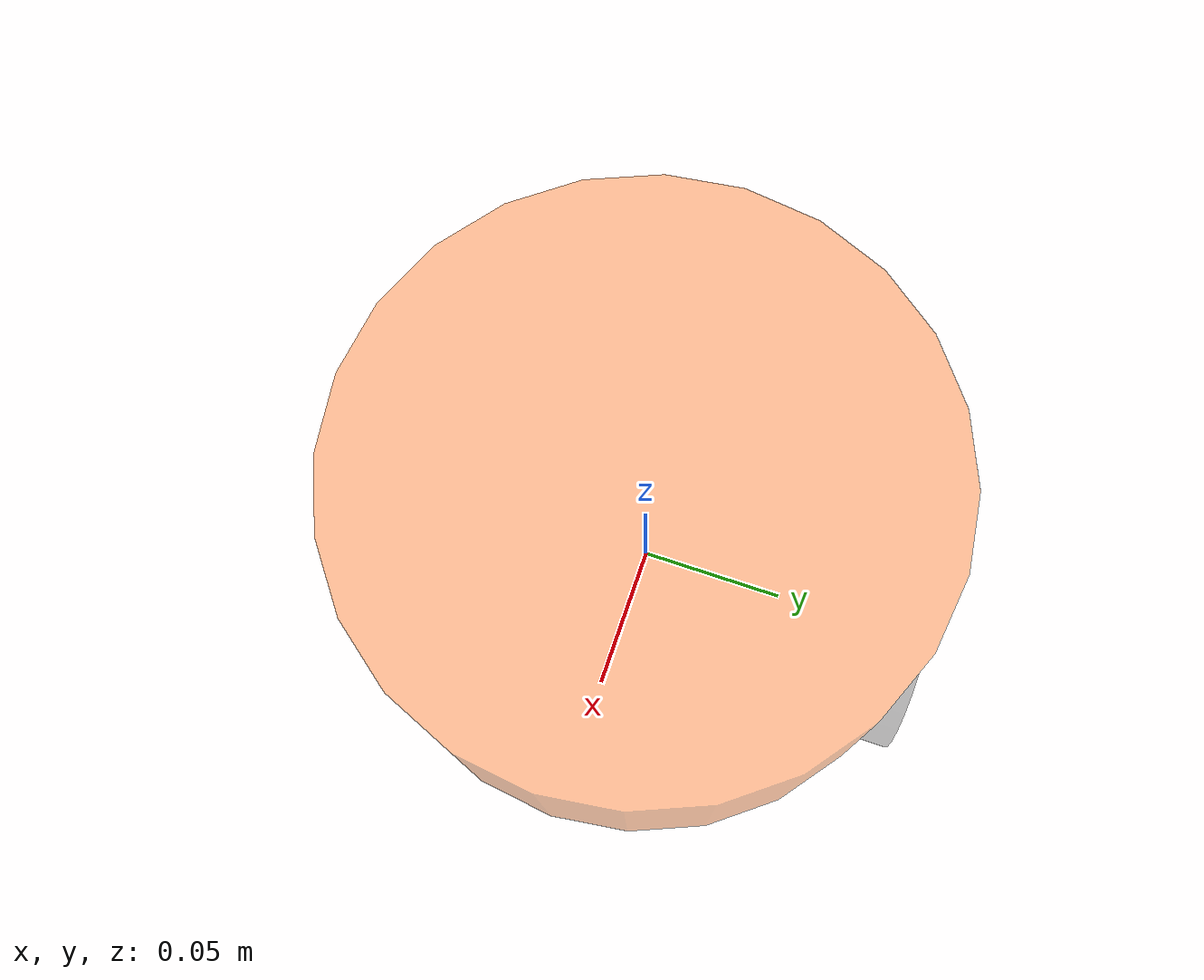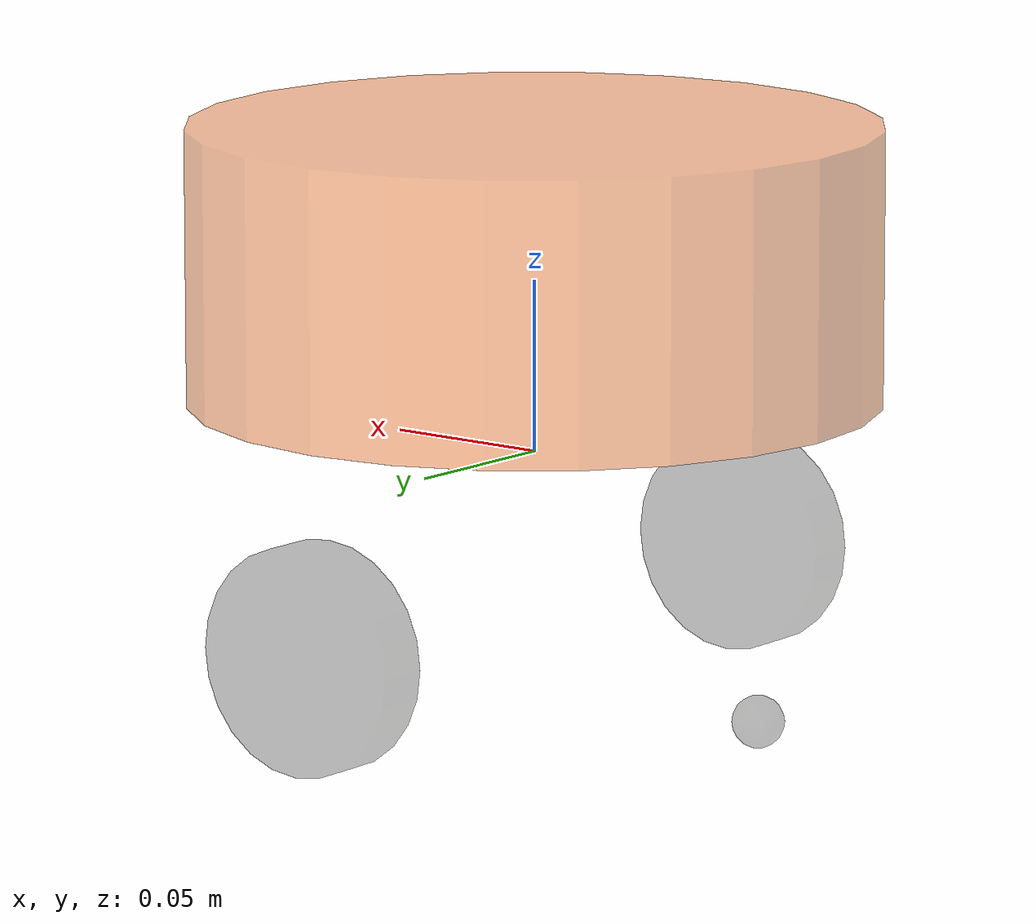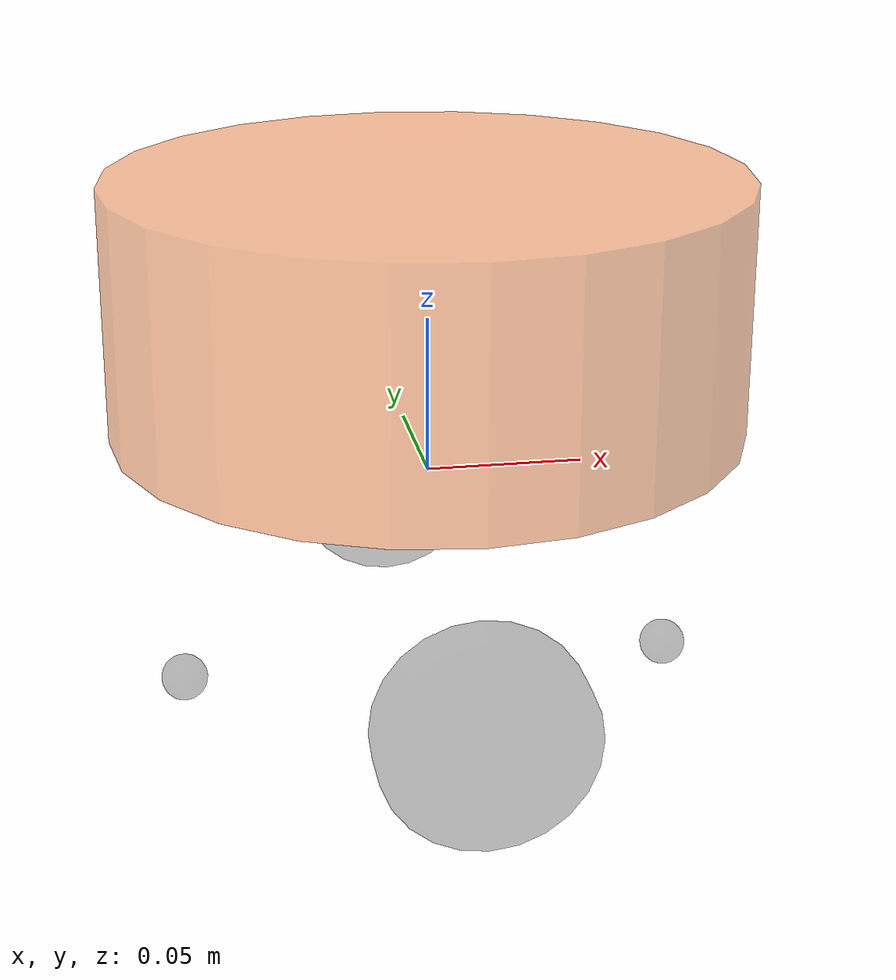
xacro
<robot name="carbase" xmlns:xacro="http://wiki.ros.org/xacro">

    <xacro:property name="footprint_radius" value="0.0001" />
    <!-- 1.添加 base_footprint -->
    <link name="base_footprint">
        <visual>
            <geometry>
                <sphere radius="${footprint_radius}" />
            </geometry>
        </visual>
    </link>

    <!-- 2.添加底盘 -->
    <!--
        形状：圆柱
        半径：0.1m
        高度：0.08m
        离地间距：0.015m
     -->
    <xacro:property name="base_radius" value="0.1" />
    <xacro:property name="base_length" value="0.23" />
    <xacro:property name="base_mass" value="2" />
    <xacro:property name="lidi" value="0.015" />
    <xacro:property name="base_joint_z" value="${base_height / 2 + lidi}" />
    <!-- 2-1.link -->
    <link name="base_link">
        <visual>
            <geometry>
                <cylinder radius="0.1" length="0.08" />
            </geometry>
            <origin xyz="0 0 0" rpy="0 0 0" />
            <material name="baselink_color">
                <color rgba="1.0 0.5 0.2 0.5" />
            </material>
        </visual>
        <collision>
            <geometry>
                <cylinder radius="0.1" length="0.08" />
            </geometry>
            <origin xyz="0 0 0" rpy="0 0 0" />
        </collision>
        <!-- 调用惯性矩阵函数 -->
        <xacro:cylinder_inertial_matrix m="${base_mass}" r="${base_radius}" h="${base_length}" />
    </link>
    <gazebo reference="base_link">
    <material>Gazebo/Yellow</material>
    </gazebo>
    <!-- 2-2.joint -->
    <joint name="link2footprint" type="fixed">
        <parent link="base_footprint" />
        <child link="base_link" />
        <!-- z = 车体高度/2 + 离地间距 -->
        <origin xyz="0 0 0.055" rpy="0 0 0" />

    </joint>

    <!-- 3.添加驱动轮 -->
    <!--
        形状：圆柱
        半径：0.0325m
        长度：0.015m
     -->
    <xacro:property name="wheel_radius" value="0.0325" />
    <xacro:property name="wheel_length" value="0.015" />
    <xacro:property name="wheel_mass" value="0.05" />
    <xacro:property name="PI" value="3.1415927" />
    <xacro:property name="wheel_joint_z" value="${( base_length / 2 + lidi - wheel_radius) * -1}" />
    <!--
        wheel_name: left or right
        flag: 1 or -1
     -->
    <xacro:macro name="wheel_func" params="wheel_name flag">
        <!-- 3-1.link -->
        <!-- ${wheel_name} -->
        <link name="${wheel_name}_wheel">
            <visual>
                <geometry>
                    <cylinder radius="${wheel_radius}" length="${wheel_length}" />
                </geometry>

                <origin xyz="0 0 0" rpy="${PI / 2} 0 0" />

                <material name="wheel_color">
                    <color rgba="0 0 0 0.3" />
                </material>
            </visual>
            <collision>
                 <geometry>
                    <cylinder radius="${wheel_radius}" length="${wheel_length}" />
                </geometry>

                <origin xyz="0 0 0" rpy="${PI / 2} 0 0" />
            </collision>
            <!-- 调用惯性矩阵 -->
            <xacro:cylinder_inertial_matrix m="${wheel_mass}" r="${wheel_radius}" h="${wheel_length}" />
        </link>
        <gazebo reference="${wheel_name}_wheel">
            <material>Gazebo/Blue</material>
        </gazebo>

        <!-- 3-2.joint -->
        <!-- ${wheel_name}_wheel -->
        <joint name="${wheel_name}2link" type="continuous">
            <parent link="base_link" />
            <child link="${wheel_name}_wheel" />
            <!--
                x = 0
                y = 车体半径
                z = -(车体高度/2 + 离地间距 - 车轮半径)
            -->
            <origin xyz="0 ${0.1 * flag} ${wheel_joint_z}" rpy="0 0 0" />
            <axis xyz="0 1 0" />
        </joint>
    </xacro:macro>
    <!-- 调用 -->
    <xacro:wheel_func wheel_name="left" flag="1" />
    <xacro:wheel_func wheel_name="right" flag="-1" />

    <!-- 4.添加万向轮 -->
    <!--
        形状：球
        半径：0.0075m
     -->
    <xacro:property name="small_wheel_radius" value="0.0075" />
    <xacro:property name="small_wheel_mass" value="0.01" />
    <xacro:property name="small_joint_z" value="${( base_length / 2 + lidi - small_wheel_radius) * -1}" />

    <!-- 4-1.link -->
    <!-- front_wheel -->
    <xacro:macro name="small_wheel_func" params="small_wheel_name small_flag" >
        <link name="${small_wheel_name}_wheel">
            <visual>
                <geometry>
                    <sphere radius="0.0075" />
                </geometry>

                <origin xyz="0 0 0" rpy="0 0 0" />

                <material name="wheel_color">
                    <color rgba="0 0 0 0.3" />
                </material>
            </visual>
            <collision>
                <geometry>
                    <sphere radius="0.0075" />
                </geometry>

                <origin xyz="0 0 0" rpy="0 0 0" />
            </collision>
            <!-- 调用惯性矩阵 -->
            <xacro:sphere_inertial_matrix m="${small_wheel_mass}" r="${small_wheel_radius}" />
        </link>
        <gazebo reference="${small_wheel_name}_wheel">
            <material>Gazebo/Blue</material>
        </gazebo>
        <!-- 4-2.joint -->
        <!-- front_wheel -->
        <joint name="${small_wheel_name}2link" type="continuous">
            <parent link="base_link" />
            <child link="${small_wheel_name}_wheel" />
            <!--
                x = 0
                y = 车体半径
                z = -(车体高度/2 + 离地间距 - 万向轮半径)
            -->
            <origin xyz="${0.08 * small_flag} 0 ${small_joint_z}" rpy="0 0 0" />
            <axis xyz="0 1 0" />
        </joint>
    </xacro:macro>
    <xacro:small_wheel_func small_wheel_name="front" small_flag="1" />
    <xacro:small_wheel_func small_wheel_name="back" small_flag="-1" />

</robot>
